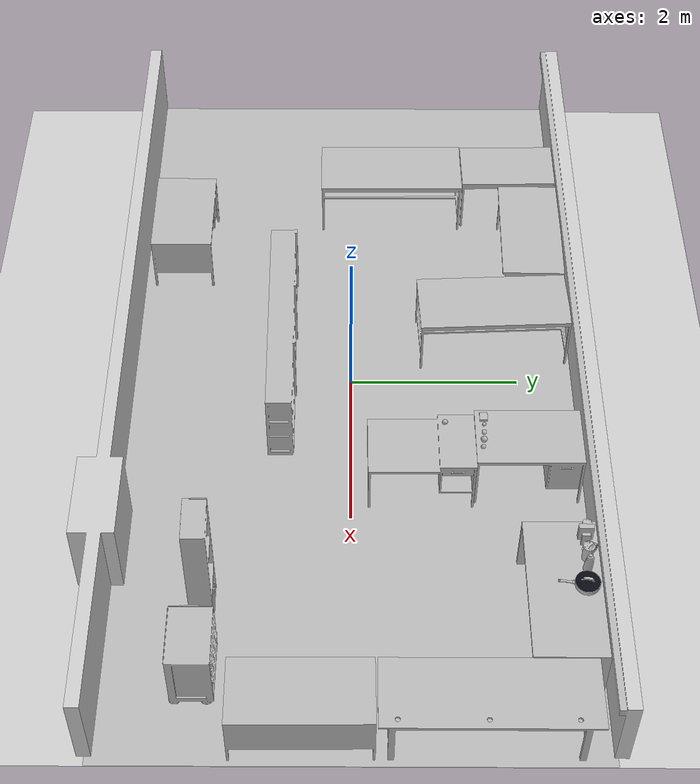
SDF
<sdf version="1.7">
 <world name="default">
  <gravity>0 0 -9.8</gravity>
  <magnetic_field>6e-06 2.3e-05 -4.2e-05</magnetic_field>
  <atmosphere type="adiabatic"/>
  <physics type="ode">
   <max_step_size>0.001</max_step_size>
   <real_time_factor>1</real_time_factor>
   <real_time_update_rate>1000</real_time_update_rate>
  </physics>
  <scene><ambient>0.4 0.4 0.4 1</ambient><background>0.7 0.7 0.7 1</background><shadows>1</shadows></scene>
  <spherical_coordinates>
   <surface_model>EARTH_WGS84</surface_model>
   <latitude_deg>0</latitude_deg>
   <longitude_deg>0</longitude_deg>
   <elevation>0</elevation>
   <heading_deg>0</heading_deg>
  </spherical_coordinates>
  <model name="gplane">
   <link name="body">
    <collision name="gplane_coll">
     <geometry><plane><normal>0 0 1</normal><size>10.075 13.18</size></plane></geometry>
     <surface><contact><ode><kp>1e+06</kp><kd>1</kd></ode></contact></surface>
     <laser_retro>2000</laser_retro>
    </collision>
    <visual name="gplane_vis">
     <geometry><plane><normal>0 0 1</normal><size>10.075 13.18</size></plane></geometry>
     <material>
      <script>
       <uri>model://base_materials/carpet/scripts</uri>
       <uri>model://base_materials/carpet/textures</uri>
       <name>carpet/carpet01</name>
      </script>
     </material>
     <cast_shadows>0</cast_shadows>
    </visual>
    <velocity_decay><linear>0</linear><angular>0</angular></velocity_decay>
   </link>
   <static>1</static>
  </model>
  <model name="Table_01">
   <link name="link_0">
    <inertial>
     <mass>14</mass>
     <inertia>
      <ixx>0.166667</ixx>
      <ixy>0</ixy>
      <ixz>0</ixz>
      <iyy>0.166667</iyy>
      <iyz>0</iyz>
      <izz>0.166667</izz>
     </inertia>
    </inertial>
    <visual name="visual">
     <geometry><mesh><uri>model://BioRoboticsLab/meshes/Table_01.dae</uri><scale>1 1 1</scale></mesh></geometry>
     <material><lighting>1</lighting><shader type="pixel"/></material>
    </visual>
    <collision name="collision">
     <geometry><mesh><uri>model://BioRoboticsLab/meshes/Table_01.dae</uri><scale>1 1 1</scale></mesh></geometry>
     <surface>
      <friction>
       <ode><mu>1</mu><mu2>1</mu2><fdir1>0 0 0</fdir1><slip1>0</slip1><slip2>0</slip2></ode>
       <torsional>
        <coefficient>1</coefficient>
        <patch_radius>0</patch_radius>
        <surface_radius>0</surface_radius>
        <use_patch_radius>1</use_patch_radius>
        <ode><slip>0</slip></ode>
       </torsional>
      </friction>
      <bounce><restitution_coefficient>0</restitution_coefficient><threshold>1e+06</threshold></bounce>
      <contact>
       <collide_without_contact>0</collide_without_contact>
       <collide_without_contact_bitmask>1</collide_without_contact_bitmask>
       <collide_bitmask>1</collide_bitmask>
       <ode>
        <soft_cfm>0</soft_cfm>
        <soft_erp>0.2</soft_erp>
        <kp>1e+13</kp>
        <kd>1</kd>
        <max_vel>0.01</max_vel>
        <min_depth>0</min_depth>
       </ode>
       <bullet>
        <split_impulse>1</split_impulse>
        <split_impulse_penetration_threshold>-0.01</split_impulse_penetration_threshold>
        <soft_cfm>0</soft_cfm>
        <soft_erp>0.2</soft_erp>
        <kp>1e+13</kp>
        <kd>1</kd>
       </bullet>
      </contact>
     </surface>
    </collision>
   </link>
   <static>1</static>
   <pose>4.62119 1.38763 0 0 -0 1.57</pose>
  </model>
  <model name="Table_02">
   <link name="link_0">
    <inertial>
     <mass>15</mass>
     <inertia>
      <ixx>0.166667</ixx>
      <ixy>0</ixy>
      <ixz>0</ixz>
      <iyy>0.166667</iyy>
      <iyz>0</iyz>
      <izz>0.166667</izz>
     </inertia>
    </inertial>
    <visual name="visual">
     <geometry><mesh><uri>model://BioRoboticsLab/meshes/Table_02.dae</uri><scale>1 1 1</scale></mesh></geometry>
     <material><lighting>1</lighting><shader type="pixel"/></material>
    </visual>
    <collision name="collision">
     <geometry><mesh><uri>model://BioRoboticsLab/meshes/Table_02.dae</uri><scale>1 1 1</scale></mesh></geometry>
     <surface>
      <friction>
       <ode><mu>1</mu><mu2>1</mu2><fdir1>0 0 0</fdir1><slip1>0</slip1><slip2>0</slip2></ode>
       <torsional>
        <coefficient>1</coefficient>
        <patch_radius>0</patch_radius>
        <surface_radius>0</surface_radius>
        <use_patch_radius>1</use_patch_radius>
        <ode><slip>0</slip></ode>
       </torsional>
      </friction>
      <bounce><restitution_coefficient>0</restitution_coefficient><threshold>1e+06</threshold></bounce>
      <contact>
       <collide_without_contact>0</collide_without_contact>
       <collide_without_contact_bitmask>1</collide_without_contact_bitmask>
       <collide_bitmask>1</collide_bitmask>
       <ode>
        <soft_cfm>0</soft_cfm>
        <soft_erp>0.2</soft_erp>
        <kp>1e+13</kp>
        <kd>1</kd>
        <max_vel>0.01</max_vel>
        <min_depth>0</min_depth>
       </ode>
       <bullet>
        <split_impulse>1</split_impulse>
        <split_impulse_penetration_threshold>-0.01</split_impulse_penetration_threshold>
        <soft_cfm>0</soft_cfm>
        <soft_erp>0.2</soft_erp>
        <kp>1e+13</kp>
        <kd>1</kd>
       </bullet>
      </contact>
     </surface>
    </collision>
   </link>
   <static>1</static>
   <pose>3.3966 2.2962 0 0 0 -3.14159</pose>
  </model>
  <model name="Table_03">
   <link name="link_0">
    <inertial>
     <mass>8</mass>
     <inertia>
      <ixx>0.166667</ixx>
      <ixy>0</ixy>
      <ixz>0</ixz>
      <iyy>0.166667</iyy>
      <iyz>0</iyz>
      <izz>0.166667</izz>
     </inertia>
    </inertial>
    <visual name="visual">
     <geometry><mesh><uri>model://BioRoboticsLab/meshes/Table_03.dae</uri><scale>1 1 1</scale></mesh></geometry>
     <material><lighting>1</lighting><shader type="pixel"/></material>
    </visual>
    <collision name="collision">
     <geometry><mesh><uri>model://BioRoboticsLab/meshes/Table_03.dae</uri><scale>1 1 1</scale></mesh></geometry>
     <surface>
      <friction>
       <ode><mu>1</mu><mu2>1</mu2><fdir1>0 0 0</fdir1><slip1>0</slip1><slip2>0</slip2></ode>
       <torsional>
        <coefficient>1</coefficient>
        <patch_radius>0</patch_radius>
        <surface_radius>0</surface_radius>
        <use_patch_radius>1</use_patch_radius>
        <ode><slip>0</slip></ode>
       </torsional>
      </friction>
      <bounce><restitution_coefficient>0</restitution_coefficient><threshold>1e+06</threshold></bounce>
      <contact>
       <collide_without_contact>0</collide_without_contact>
       <collide_without_contact_bitmask>1</collide_without_contact_bitmask>
       <collide_bitmask>1</collide_bitmask>
       <ode>
        <soft_cfm>0</soft_cfm>
        <soft_erp>0.2</soft_erp>
        <kp>1e+13</kp>
        <kd>1</kd>
        <max_vel>0.01</max_vel>
        <min_depth>0</min_depth>
       </ode>
       <bullet>
        <split_impulse>1</split_impulse>
        <split_impulse_penetration_threshold>-0.01</split_impulse_penetration_threshold>
        <soft_cfm>0</soft_cfm>
        <soft_erp>0.2</soft_erp>
        <kp>1e+13</kp>
        <kd>1</kd>
       </bullet>
      </contact>
     </surface>
    </collision>
   </link>
   <static>1</static>
   <pose>-0.655137 1.71075 0 0 -0 1.61624</pose>
  </model>
  <model name="Shelf_02">
   <link name="link_0">
    <inertial>
     <mass>12</mass>
     <inertia>
      <ixx>0.166667</ixx>
      <ixy>0</ixy>
      <ixz>0</ixz>
      <iyy>0.166667</iyy>
      <iyz>0</iyz>
      <izz>0.166667</izz>
     </inertia>
    </inertial>
    <visual name="visual">
     <geometry><mesh><uri>model://BioRoboticsLab/meshes/Shelf_02.dae</uri><scale>1 1 1</scale></mesh></geometry>
     <material><lighting>1</lighting><shader type="pixel"/></material>
    </visual>
    <collision name="collision">
     <geometry><mesh><uri>model://BioRoboticsLab/meshes/Shelf_02.dae</uri><scale>1 1 1</scale></mesh></geometry>
     <surface>
      <friction>
       <ode><mu>1</mu><mu2>1</mu2><fdir1>0 0 0</fdir1><slip1>0</slip1><slip2>0</slip2></ode>
       <torsional>
        <coefficient>1</coefficient>
        <patch_radius>0</patch_radius>
        <surface_radius>0</surface_radius>
        <use_patch_radius>1</use_patch_radius>
        <ode><slip>0</slip></ode>
       </torsional>
      </friction>
      <bounce><restitution_coefficient>0</restitution_coefficient><threshold>1e+06</threshold></bounce>
      <contact>
       <collide_without_contact>0</collide_without_contact>
       <collide_without_contact_bitmask>1</collide_without_contact_bitmask>
       <collide_bitmask>1</collide_bitmask>
       <ode>
        <soft_cfm>0</soft_cfm>
        <soft_erp>0.2</soft_erp>
        <kp>1e+13</kp>
        <kd>1</kd>
        <max_vel>0.01</max_vel>
        <min_depth>0</min_depth>
       </ode>
       <bullet>
        <split_impulse>1</split_impulse>
        <split_impulse_penetration_threshold>-0.01</split_impulse_penetration_threshold>
        <soft_cfm>0</soft_cfm>
        <soft_erp>0.2</soft_erp>
        <kp>1e+13</kp>
        <kd>1</kd>
       </bullet>
      </contact>
     </surface>
    </collision>
   </link>
   <static>1</static>
   <pose>3.1815  -1.58084 0 0 -0 0.019976</pose>
  </model>
  <model name="Lab_Mesh">
   <link name="link_0">
    <inertial>
     <mass>100000</mass>
     <inertia>
      <ixx>0.166667</ixx>
      <ixy>0</ixy>
      <ixz>0</ixz>
      <iyy>0.166667</iyy>
      <iyz>0</iyz>
      <izz>0.166667</izz>
     </inertia>
    </inertial>
    <visual name="visual">
     <geometry><mesh><uri>model://BioRoboticsLab/meshes/Lab_Mesh.dae</uri><scale>1 1 1</scale></mesh></geometry>
     <material><lighting>1</lighting><shader type="pixel"/></material>
    </visual>
    <collision name="collision">
     <geometry><mesh><uri>model://BioRoboticsLab/meshes/Lab_Mesh.dae</uri><scale>1 1 1</scale></mesh></geometry>
     <surface>
      <friction>
       <ode><mu>1</mu><mu2>1</mu2><fdir1>0 0 0</fdir1><slip1>0</slip1><slip2>0</slip2></ode>
       <torsional>
        <coefficient>1</coefficient>
        <patch_radius>0</patch_radius>
        <surface_radius>0</surface_radius>
        <use_patch_radius>1</use_patch_radius>
        <ode><slip>0</slip></ode>
       </torsional>
      </friction>
      <bounce><restitution_coefficient>0</restitution_coefficient><threshold>1e+06</threshold></bounce>
      <contact>
       <collide_without_contact>0</collide_without_contact>
       <collide_without_contact_bitmask>1</collide_without_contact_bitmask>
       <collide_bitmask>1</collide_bitmask>
       <ode>
        <soft_cfm>0</soft_cfm>
        <soft_erp>0.2</soft_erp>
        <kp>1e+13</kp>
        <kd>1</kd>
        <max_vel>0.01</max_vel>
        <min_depth>0</min_depth>
       </ode>
       <bullet>
        <split_impulse>1</split_impulse>
        <split_impulse_penetration_threshold>-0.01</split_impulse_penetration_threshold>
        <soft_cfm>0</soft_cfm>
        <soft_erp>0.2</soft_erp>
        <kp>1e+13</kp>
        <kd>1</kd>
       </bullet>
      </contact>
     </surface>
    </collision>
   </link>
   <static>1</static>
   <pose>-0.092622 0.025231 0 0 -0 0</pose>
  </model>
  <model name="Lab_Floor">
   <link name="link_0">
    <inertial>
     <mass>1</mass>
     <inertia>
      <ixx>0.166667</ixx>
      <ixy>0</ixy>
      <ixz>0</ixz>
      <iyy>0.166667</iyy>
      <iyz>0</iyz>
      <izz>0.166667</izz>
     </inertia>
    </inertial>
    <visual name="visual">
     <geometry><mesh><uri>model://BioRoboticsLab/meshes/Lab_Floor.dae</uri><scale>1 1 1</scale></mesh></geometry>
     <material><lighting>1</lighting><shader type="pixel"/></material>
    </visual>
   </link>
   <static>1</static>
   <pose>0 0 0.005 0 -0 0</pose>
  </model>
  <model name="002_master_chef_can">
   <link name="link_0">
    <inertial>
     <mass>0.6</mass>
     <inertia>
      <ixx>0.166667</ixx>
      <ixy>0</ixy>
      <ixz>0</ixz>
      <iyy>0.166667</iyy>
      <iyz>0</iyz>
      <izz>0.166667</izz>
     </inertia>
    </inertial>
    <visual name="visual">
     <geometry>
      <mesh><uri>model://YCB_virtual/meshes/002_master_chef_can.dae</uri><scale>1 1 1</scale></mesh>
     </geometry>
     <material><lighting>1</lighting><shader type="pixel"/></material>
    </visual>
    <collision name="collision">
     <geometry>
      <mesh><uri>model://YCB_virtual/meshes/002_master_chef_can.dae</uri><scale>1 1 1</scale></mesh>
     </geometry>
     <surface>
      <friction>
       <ode><mu>1</mu><mu2>1</mu2><fdir1>0 0 0</fdir1><slip1>0</slip1><slip2>0</slip2></ode>
       <torsional>
        <coefficient>1</coefficient>
        <patch_radius>0</patch_radius>
        <surface_radius>0</surface_radius>
        <use_patch_radius>1</use_patch_radius>
        <ode><slip>0</slip></ode>
       </torsional>
      </friction>
      <bounce><restitution_coefficient>0</restitution_coefficient><threshold>1e+06</threshold></bounce>
      <contact>
       <collide_without_contact>0</collide_without_contact>
       <collide_without_contact_bitmask>1</collide_without_contact_bitmask>
       <collide_bitmask>1</collide_bitmask>
       <ode>
        <soft_cfm>0</soft_cfm>
        <soft_erp>0.2</soft_erp>
        <kp>1e+13</kp>
        <kd>1</kd>
        <max_vel>0.01</max_vel>
        <min_depth>0</min_depth>
       </ode>
       <bullet>
        <split_impulse>1</split_impulse>
        <split_impulse_penetration_threshold>-0.01</split_impulse_penetration_threshold>
        <soft_cfm>0</soft_cfm>
        <soft_erp>0.2</soft_erp>
        <kp>1e+13</kp>
        <kd>1</kd>
       </bullet>
      </contact>
     </surface>
    </collision>
   </link>
   <static>0</static>
   <pose>2.6798 2.50144 0.824095 -9e-06 -6e-06 0.000442</pose>
  </model>
  <model name="003_cracker_box">
   <link name="link_0">
    <inertial>
     <mass>1</mass>
     <inertia>
      <ixx>0.166667</ixx>
      <ixy>0</ixy>
      <ixz>0</ixz>
      <iyy>0.166667</iyy>
      <iyz>0</iyz>
      <izz>0.166667</izz>
     </inertia>
    </inertial>
    <visual name="visual">
     <geometry>
      <mesh><uri>model://YCB_virtual/meshes/003_cracker_box.dae</uri><scale>1 1 1</scale></mesh>
     </geometry>
     <material><lighting>1</lighting><shader type="pixel"/></material>
    </visual>
    <collision name="collision">
     <geometry>
      <mesh><uri>model://YCB_virtual/meshes/003_cracker_box.dae</uri><scale>1 1 1</scale></mesh>
     </geometry>
     <surface>
      <friction>
       <ode><mu>1</mu><mu2>1</mu2><fdir1>0 0 0</fdir1><slip1>0</slip1><slip2>0</slip2></ode>
       <torsional>
        <coefficient>1</coefficient>
        <patch_radius>0</patch_radius>
        <surface_radius>0</surface_radius>
        <use_patch_radius>1</use_patch_radius>
        <ode><slip>0</slip></ode>
       </torsional>
      </friction>
      <bounce><restitution_coefficient>0</restitution_coefficient><threshold>1e+06</threshold></bounce>
      <contact>
       <collide_without_contact>0</collide_without_contact>
       <collide_without_contact_bitmask>1</collide_without_contact_bitmask>
       <collide_bitmask>1</collide_bitmask>
       <ode>
        <soft_cfm>0</soft_cfm>
        <soft_erp>0.2</soft_erp>
        <kp>1e+13</kp>
        <kd>1</kd>
        <max_vel>0.01</max_vel>
        <min_depth>0</min_depth>
       </ode>
       <bullet>
        <split_impulse>1</split_impulse>
        <split_impulse_penetration_threshold>-0.01</split_impulse_penetration_threshold>
        <soft_cfm>0</soft_cfm>
        <soft_erp>0.2</soft_erp>
        <kp>1e+13</kp>
        <kd>1</kd>
       </bullet>
      </contact>
     </surface>
    </collision>
   </link>
   <static>0</static>
   <pose>2.7741 2.47991 0.86 2e-06 -1e-06 8.8e-05</pose>
  </model>
  <model name="004_sugar_box">
   <link name="link_0">
    <inertial>
     <mass>0.45</mass>
     <inertia>
      <ixx>0.166667</ixx>
      <ixy>0</ixy>
      <ixz>0</ixz>
      <iyy>0.166667</iyy>
      <iyz>0</iyz>
      <izz>0.166667</izz>
     </inertia>
    </inertial>
    <visual name="visual">
     <geometry><mesh><uri>model://YCB_virtual/meshes/004_sugar_box.dae</uri><scale>1 1 1</scale></mesh></geometry>
     <material><lighting>1</lighting><shader type="pixel"/></material>
    </visual>
    <collision name="collision">
     <geometry><mesh><uri>model://YCB_virtual/meshes/004_sugar_box.dae</uri><scale>1 1 1</scale></mesh></geometry>
     <surface>
      <friction>
       <ode><mu>1</mu><mu2>1</mu2><fdir1>0 0 0</fdir1><slip1>0</slip1><slip2>0</slip2></ode>
       <torsional>
        <coefficient>1</coefficient>
        <patch_radius>0</patch_radius>
        <surface_radius>0</surface_radius>
        <use_patch_radius>1</use_patch_radius>
        <ode><slip>0</slip></ode>
       </torsional>
      </friction>
      <bounce><restitution_coefficient>0</restitution_coefficient><threshold>1e+06</threshold></bounce>
      <contact>
       <collide_without_contact>0</collide_without_contact>
       <collide_without_contact_bitmask>1</collide_without_contact_bitmask>
       <collide_bitmask>1</collide_bitmask>
       <ode>
        <soft_cfm>0</soft_cfm>
        <soft_erp>0.2</soft_erp>
        <kp>1e+13</kp>
        <kd>1</kd>
        <max_vel>0.01</max_vel>
        <min_depth>0</min_depth>
       </ode>
       <bullet>
        <split_impulse>1</split_impulse>
        <split_impulse_penetration_threshold>-0.01</split_impulse_penetration_threshold>
        <soft_cfm>0</soft_cfm>
        <soft_erp>0.2</soft_erp>
        <kp>1e+13</kp>
        <kd>1</kd>
       </bullet>
      </contact>
     </surface>
    </collision>
   </link>
   <static>0</static>
   <pose>2.85382 2.4742 0.842496 2e-06 2e-06 0.000887</pose>
  </model>
  <model name="008_pudding_box">
   <link name="link_0">
    <inertial>
     <mass>0.167</mass>
     <inertia>
      <ixx>0.166667</ixx>
      <ixy>0</ixy>
      <ixz>0</ixz>
      <iyy>0.166667</iyy>
      <iyz>0</iyz>
      <izz>0.166667</izz>
     </inertia>
    </inertial>
    <visual name="visual">
     <geometry>
      <mesh><uri>model://YCB_virtual/meshes/008_pudding_box.dae</uri><scale>1 1 1</scale></mesh>
     </geometry>
     <material><lighting>1</lighting><shader type="pixel"/></material>
    </visual>
    <collision name="collision">
     <geometry>
      <mesh><uri>model://YCB_virtual/meshes/008_pudding_box.dae</uri><scale>1 1 1</scale></mesh>
     </geometry>
     <surface>
      <friction>
       <ode><mu>1</mu><mu2>1</mu2><fdir1>0 0 0</fdir1><slip1>0</slip1><slip2>0</slip2></ode>
       <torsional>
        <coefficient>1</coefficient>
        <patch_radius>0</patch_radius>
        <surface_radius>0</surface_radius>
        <use_patch_radius>1</use_patch_radius>
        <ode><slip>0</slip></ode>
       </torsional>
      </friction>
      <bounce><restitution_coefficient>0</restitution_coefficient><threshold>1e+06</threshold></bounce>
      <contact>
       <collide_without_contact>0</collide_without_contact>
       <collide_without_contact_bitmask>1</collide_without_contact_bitmask>
       <collide_bitmask>1</collide_bitmask>
       <ode>
        <soft_cfm>0</soft_cfm>
        <soft_erp>0.2</soft_erp>
        <kp>1e+13</kp>
        <kd>1</kd>
        <max_vel>0.01</max_vel>
        <min_depth>0</min_depth>
       </ode>
       <bullet>
        <split_impulse>1</split_impulse>
        <split_impulse_penetration_threshold>-0.01</split_impulse_penetration_threshold>
        <soft_cfm>0</soft_cfm>
        <soft_erp>0.2</soft_erp>
        <kp>1e+13</kp>
        <kd>1</kd>
       </bullet>
      </contact>
     </surface>
    </collision>
   </link>
   <static>0</static>
   <pose>1.15528 1.49156 0.777077 0.004784 -0.003859 9.4e-05</pose>
  </model>
  <model name="009_gelatin_box">
   <link name="link_0">
    <inertial>
     <mass>0.09</mass>
     <inertia>
      <ixx>0.166667</ixx>
      <ixy>0</ixy>
      <ixz>0</ixz>
      <iyy>0.166667</iyy>
      <iyz>0</iyz>
      <izz>0.166667</izz>
     </inertia>
    </inertial>
    <visual name="visual">
     <geometry>
      <mesh><uri>model://YCB_virtual/meshes/009_gelatin_box.dae</uri><scale>1 1 1</scale></mesh>
     </geometry>
     <material><lighting>1</lighting><shader type="pixel"/></material>
    </visual>
    <collision name="collision">
     <geometry>
      <mesh><uri>model://YCB_virtual/meshes/009_gelatin_box.dae</uri><scale>1 1 1</scale></mesh>
     </geometry>
     <surface>
      <friction>
       <ode><mu>1</mu><mu2>1</mu2><fdir1>0 0 0</fdir1><slip1>0</slip1><slip2>0</slip2></ode>
       <torsional>
        <coefficient>1</coefficient>
        <patch_radius>0</patch_radius>
        <surface_radius>0</surface_radius>
        <use_patch_radius>1</use_patch_radius>
        <ode><slip>0</slip></ode>
       </torsional>
      </friction>
      <bounce><restitution_coefficient>0</restitution_coefficient><threshold>1e+06</threshold></bounce>
      <contact>
       <collide_without_contact>0</collide_without_contact>
       <collide_without_contact_bitmask>1</collide_without_contact_bitmask>
       <collide_bitmask>1</collide_bitmask>
       <ode>
        <soft_cfm>0</soft_cfm>
        <soft_erp>0.2</soft_erp>
        <kp>1e+13</kp>
        <kd>1</kd>
        <max_vel>0.01</max_vel>
        <min_depth>0</min_depth>
       </ode>
       <bullet>
        <split_impulse>1</split_impulse>
        <split_impulse_penetration_threshold>-0.01</split_impulse_penetration_threshold>
        <soft_cfm>0</soft_cfm>
        <soft_erp>0.2</soft_erp>
        <kp>1e+13</kp>
        <kd>1</kd>
       </bullet>
      </contact>
     </surface>
    </collision>
   </link>
   <static>0</static>
   <pose>2.93226 2.50399 0.769202 -0 0.00419 -3.4e-05</pose>
  </model>
  <model name="012_strawberry">
   <link name="link_0">
    <inertial>
     <mass>0.01</mass>
     <inertia>
      <ixx>0.166667</ixx>
      <ixy>0</ixy>
      <ixz>0</ixz>
      <iyy>0.166667</iyy>
      <iyz>0</iyz>
      <izz>0.166667</izz>
     </inertia>
    </inertial>
    <visual name="visual">
     <geometry><mesh><uri>model://YCB_virtual/meshes/012_strawberry.dae</uri><scale>1 1 1</scale></mesh></geometry>
     <material><lighting>1</lighting><shader type="pixel"/></material>
    </visual>
    <collision name="collision">
     <geometry><mesh><uri>model://YCB_virtual/meshes/012_strawberry.dae</uri><scale>1 1 1</scale></mesh></geometry>
     <surface>
      <friction>
       <ode><mu>1</mu><mu2>1</mu2><fdir1>0 0 0</fdir1><slip1>0</slip1><slip2>0</slip2></ode>
       <torsional>
        <coefficient>1</coefficient>
        <patch_radius>0</patch_radius>
        <surface_radius>0</surface_radius>
        <use_patch_radius>1</use_patch_radius>
        <ode><slip>0</slip></ode>
       </torsional>
      </friction>
      <bounce><restitution_coefficient>0</restitution_coefficient><threshold>1e+06</threshold></bounce>
      <contact>
       <collide_without_contact>0</collide_without_contact>
       <collide_without_contact_bitmask>1</collide_without_contact_bitmask>
       <collide_bitmask>1</collide_bitmask>
       <ode>
        <soft_cfm>0</soft_cfm>
        <soft_erp>0.2</soft_erp>
        <kp>1e+13</kp>
        <kd>1</kd>
        <max_vel>0.01</max_vel>
        <min_depth>0</min_depth>
       </ode>
       <bullet>
        <split_impulse>1</split_impulse>
        <split_impulse_penetration_threshold>-0.01</split_impulse_penetration_threshold>
        <soft_cfm>0</soft_cfm>
        <soft_erp>0.2</soft_erp>
        <kp>1e+13</kp>
        <kd>1</kd>
       </bullet>
      </contact>
     </surface>
    </collision>
   </link>
   <static>0</static>
   <pose>1.26453 1.49463 0.780731 0.102856 -0.02475 -0.002407</pose>
  </model>
  <model name="014_lemon">
   <link name="link_0">
    <inertial>
     <mass>0.1</mass>
     <inertia>
      <ixx>0.166667</ixx>
      <ixy>0</ixy>
      <ixz>0</ixz>
      <iyy>0.166667</iyy>
      <iyz>0</iyz>
      <izz>0.166667</izz>
     </inertia>
    </inertial>
    <visual name="visual">
     <geometry><mesh><uri>model://YCB_virtual/meshes/014_lemon.dae</uri><scale>1 1 1</scale></mesh></geometry>
     <material><lighting>1</lighting><shader type="pixel"/></material>
    </visual>
    <collision name="collision">
     <geometry><mesh><uri>model://YCB_virtual/meshes/014_lemon.dae</uri><scale>1 1 1</scale></mesh></geometry>
     <surface>
      <friction>
       <ode><mu>1</mu><mu2>1</mu2><fdir1>0 0 0</fdir1><slip1>0</slip1><slip2>0</slip2></ode>
       <torsional>
        <coefficient>1</coefficient>
        <patch_radius>0</patch_radius>
        <surface_radius>0</surface_radius>
        <use_patch_radius>1</use_patch_radius>
        <ode><slip>0</slip></ode>
       </torsional>
      </friction>
      <bounce><restitution_coefficient>0</restitution_coefficient><threshold>1e+06</threshold></bounce>
      <contact>
       <collide_without_contact>0</collide_without_contact>
       <collide_without_contact_bitmask>1</collide_without_contact_bitmask>
       <collide_bitmask>1</collide_bitmask>
       <ode>
        <soft_cfm>0</soft_cfm>
        <soft_erp>0.2</soft_erp>
        <kp>1e+13</kp>
        <kd>1</kd>
        <max_vel>0.01</max_vel>
        <min_depth>0</min_depth>
       </ode>
       <bullet>
        <split_impulse>1</split_impulse>
        <split_impulse_penetration_threshold>-0.01</split_impulse_penetration_threshold>
        <soft_cfm>0</soft_cfm>
        <soft_erp>0.2</soft_erp>
        <kp>1e+13</kp>
        <kd>1</kd>
       </bullet>
      </contact>
     </surface>
    </collision>
   </link>
   <static>0</static>
   <pose>1.37886 1.48752 0.78598 0.095457 0.089969 0.003766</pose>
  </model>
  <model name="015_peach">
   <link name="link_0">
    <inertial>
     <mass>0.12</mass>
     <inertia>
      <ixx>0.166667</ixx>
      <ixy>0</ixy>
      <ixz>0</ixz>
      <iyy>0.166667</iyy>
      <iyz>0</iyz>
      <izz>0.166667</izz>
     </inertia>
    </inertial>
    <visual name="visual">
     <geometry><mesh><uri>model://YCB_virtual/meshes/015_peach.dae</uri><scale>1 1 1</scale></mesh></geometry>
     <material><lighting>1</lighting><shader type="pixel"/></material>
    </visual>
    <collision name="collision">
     <geometry><mesh><uri>model://YCB_virtual/meshes/015_peach.dae</uri><scale>1 1 1</scale></mesh></geometry>
     <surface>
      <friction>
       <ode><mu>1</mu><mu2>1</mu2><fdir1>0 0 0</fdir1><slip1>0</slip1><slip2>0</slip2></ode>
       <torsional>
        <coefficient>1</coefficient>
        <patch_radius>0</patch_radius>
        <surface_radius>0</surface_radius>
        <use_patch_radius>1</use_patch_radius>
        <ode><slip>0</slip></ode>
       </torsional>
      </friction>
      <bounce><restitution_coefficient>0</restitution_coefficient><threshold>1e+06</threshold></bounce>
      <contact>
       <collide_without_contact>0</collide_without_contact>
       <collide_without_contact_bitmask>1</collide_without_contact_bitmask>
       <collide_bitmask>1</collide_bitmask>
       <ode>
        <soft_cfm>0</soft_cfm>
        <soft_erp>0.2</soft_erp>
        <kp>1e+13</kp>
        <kd>1</kd>
        <max_vel>0.01</max_vel>
        <min_depth>0</min_depth>
       </ode>
       <bullet>
        <split_impulse>1</split_impulse>
        <split_impulse_penetration_threshold>-0.01</split_impulse_penetration_threshold>
        <soft_cfm>0</soft_cfm>
        <soft_erp>0.2</soft_erp>
        <kp>1e+13</kp>
        <kd>1</kd>
       </bullet>
      </contact>
     </surface>
    </collision>
   </link>
   <static>0</static>
   <pose>1.2384 1.05482 0.788496 0.021421 -0.087371 8.1e-05</pose>
  </model>
  <model name="017_orange">
   <link name="link_0">
    <inertial>
     <mass>0.25</mass>
     <inertia>
      <ixx>0.166667</ixx>
      <ixy>0</ixy>
      <ixz>0</ixz>
      <iyy>0.166667</iyy>
      <iyz>0</iyz>
      <izz>0.166667</izz>
     </inertia>
    </inertial>
    <visual name="visual">
     <geometry><mesh><uri>model://YCB_virtual/meshes/017_orange.dae</uri><scale>1 1 1</scale></mesh></geometry>
     <material><lighting>1</lighting><shader type="pixel"/></material>
    </visual>
    <collision name="collision">
     <geometry><mesh><uri>model://YCB_virtual/meshes/017_orange.dae</uri><scale>1 1 1</scale></mesh></geometry>
     <surface>
      <friction>
       <ode><mu>1</mu><mu2>1</mu2><fdir1>0 0 0</fdir1><slip1>0</slip1><slip2>0</slip2></ode>
       <torsional>
        <coefficient>1</coefficient>
        <patch_radius>0</patch_radius>
        <surface_radius>0</surface_radius>
        <use_patch_radius>1</use_patch_radius>
        <ode><slip>0</slip></ode>
       </torsional>
      </friction>
      <bounce><restitution_coefficient>0</restitution_coefficient><threshold>1e+06</threshold></bounce>
      <contact>
       <collide_without_contact>0</collide_without_contact>
       <collide_without_contact_bitmask>1</collide_without_contact_bitmask>
       <collide_bitmask>1</collide_bitmask>
       <ode>
        <soft_cfm>0</soft_cfm>
        <soft_erp>0.2</soft_erp>
        <kp>1e+13</kp>
        <kd>1</kd>
        <max_vel>0.01</max_vel>
        <min_depth>0</min_depth>
       </ode>
       <bullet>
        <split_impulse>1</split_impulse>
        <split_impulse_penetration_threshold>-0.01</split_impulse_penetration_threshold>
        <soft_cfm>0</soft_cfm>
        <soft_erp>0.2</soft_erp>
        <kp>1e+13</kp>
        <kd>1</kd>
       </bullet>
      </contact>
     </surface>
    </collision>
   </link>
   <static>0</static>
   <pose>1.48638 1.48128 0.793781 0.006122 0.022557 -3.4e-05</pose>
  </model>
  <model name="018_plum">
   <link name="link_0">
    <inertial>
     <mass>0.08</mass>
     <inertia>
      <ixx>0.166667</ixx>
      <ixy>0</ixy>
      <ixz>0</ixz>
      <iyy>0.166667</iyy>
      <iyz>0</iyz>
      <izz>0.166667</izz>
     </inertia>
    </inertial>
    <visual name="visual">
     <geometry><mesh><uri>model://YCB_virtual/meshes/018_plum.dae</uri><scale>1 1 1</scale></mesh></geometry>
     <material><lighting>1</lighting><shader type="pixel"/></material>
    </visual>
    <collision name="collision">
     <geometry><mesh><uri>model://YCB_virtual/meshes/018_plum.dae</uri><scale>1 1 1</scale></mesh></geometry>
     <surface>
      <friction>
       <ode><mu>1</mu><mu2>1</mu2><fdir1>0 0 0</fdir1><slip1>0</slip1><slip2>0</slip2></ode>
       <torsional>
        <coefficient>1</coefficient>
        <patch_radius>0</patch_radius>
        <surface_radius>0</surface_radius>
        <use_patch_radius>1</use_patch_radius>
        <ode><slip>0</slip></ode>
       </torsional>
      </friction>
      <bounce><restitution_coefficient>0</restitution_coefficient><threshold>1e+06</threshold></bounce>
      <contact>
       <collide_without_contact>0</collide_without_contact>
       <collide_without_contact_bitmask>1</collide_without_contact_bitmask>
       <collide_bitmask>1</collide_bitmask>
       <ode>
        <soft_cfm>0</soft_cfm>
        <soft_erp>0.2</soft_erp>
        <kp>1e+13</kp>
        <kd>1</kd>
        <max_vel>0.01</max_vel>
        <min_depth>0</min_depth>
       </ode>
       <bullet>
        <split_impulse>1</split_impulse>
        <split_impulse_penetration_threshold>-0.01</split_impulse_penetration_threshold>
        <soft_cfm>0</soft_cfm>
        <soft_erp>0.2</soft_erp>
        <kp>1e+13</kp>
        <kd>1</kd>
       </bullet>
      </contact>
     </surface>
    </collision>
   </link>
   <static>0</static>
   <pose>1.58296 1.46964 0.783689 0.00579 -0.027533 7.1e-05</pose>
  </model>
  <model name="019_pitcher_base">
   <link name="link_0">
    <inertial>
     <mass>0.4</mass>
     <inertia>
      <ixx>0.166667</ixx>
      <ixy>0</ixy>
      <ixz>0</ixz>
      <iyy>0.166667</iyy>
      <iyz>0</iyz>
      <izz>0.166667</izz>
     </inertia>
    </inertial>
    <visual name="visual">
     <geometry>
      <mesh><uri>model://YCB_virtual/meshes/019_pitcher_base.dae</uri><scale>1 1 1</scale></mesh>
     </geometry>
     <material><lighting>1</lighting><shader type="pixel"/></material>
    </visual>
    <collision name="collision">
     <geometry>
      <mesh><uri>model://YCB_virtual/meshes/019_pitcher_base.dae</uri><scale>1 1 1</scale></mesh>
     </geometry>
     <surface>
      <friction>
       <ode><mu>1</mu><mu2>1</mu2><fdir1>0 0 0</fdir1><slip1>0</slip1><slip2>0</slip2></ode>
       <torsional>
        <coefficient>1</coefficient>
        <patch_radius>0</patch_radius>
        <surface_radius>0</surface_radius>
        <use_patch_radius>1</use_patch_radius>
        <ode><slip>0</slip></ode>
       </torsional>
      </friction>
      <bounce><restitution_coefficient>0</restitution_coefficient><threshold>1e+06</threshold></bounce>
      <contact>
       <collide_without_contact>0</collide_without_contact>
       <collide_without_contact_bitmask>1</collide_without_contact_bitmask>
       <collide_bitmask>1</collide_bitmask>
       <ode>
        <soft_cfm>0</soft_cfm>
        <soft_erp>0.2</soft_erp>
        <kp>1e+13</kp>
        <kd>1</kd>
        <max_vel>0.01</max_vel>
        <min_depth>0</min_depth>
       </ode>
       <bullet>
        <split_impulse>1</split_impulse>
        <split_impulse_penetration_threshold>-0.01</split_impulse_penetration_threshold>
        <soft_cfm>0</soft_cfm>
        <soft_erp>0.2</soft_erp>
        <kp>1e+13</kp>
        <kd>1</kd>
       </bullet>
      </contact>
     </surface>
    </collision>
   </link>
   <static>0</static>
   <pose>3.03744 2.48178 0.890674 1e-06 -2e-06 -1.16977</pose>
  </model>
  <model name="021_bleach_cleanser">
   <link name="link_0">
    <inertial>
     <mass>1.02</mass>
     <inertia>
      <ixx>0.166667</ixx>
      <ixy>0</ixy>
      <ixz>0</ixz>
      <iyy>0.166667</iyy>
      <iyz>0</iyz>
      <izz>0.166667</izz>
     </inertia>
    </inertial>
    <visual name="visual">
     <geometry>
      <mesh><uri>model://YCB_virtual/meshes/021_bleach_cleanser.dae</uri><scale>1 1 1</scale></mesh>
     </geometry>
     <material><lighting>1</lighting><shader type="pixel"/></material>
    </visual>
    <collision name="collision">
     <geometry>
      <mesh><uri>model://YCB_virtual/meshes/021_bleach_cleanser.dae</uri><scale>1 1 1</scale></mesh>
     </geometry>
     <surface>
      <friction>
       <ode><mu>1</mu><mu2>1</mu2><fdir1>0 0 0</fdir1><slip1>0</slip1><slip2>0</slip2></ode>
       <torsional>
        <coefficient>1</coefficient>
        <patch_radius>0</patch_radius>
        <surface_radius>0</surface_radius>
        <use_patch_radius>1</use_patch_radius>
        <ode><slip>0</slip></ode>
       </torsional>
      </friction>
      <bounce><restitution_coefficient>0</restitution_coefficient><threshold>1e+06</threshold></bounce>
      <contact>
       <collide_without_contact>0</collide_without_contact>
       <collide_without_contact_bitmask>1</collide_without_contact_bitmask>
       <collide_bitmask>1</collide_bitmask>
       <ode>
        <soft_cfm>0</soft_cfm>
        <soft_erp>0.2</soft_erp>
        <kp>1e+13</kp>
        <kd>1</kd>
        <max_vel>0.01</max_vel>
        <min_depth>0</min_depth>
       </ode>
       <bullet>
        <split_impulse>1</split_impulse>
        <split_impulse_penetration_threshold>-0.01</split_impulse_penetration_threshold>
        <soft_cfm>0</soft_cfm>
        <soft_erp>0.2</soft_erp>
        <kp>1e+13</kp>
        <kd>1</kd>
       </bullet>
      </contact>
     </surface>
    </collision>
   </link>
   <static>0</static>
   <pose>3.16547 2.47784 0.861424 0.00024 -2e-06 0.000912</pose>
  </model>
  <model name="027_skilletd">
   <link name="link_0">
    <inertial>
     <mass>1.6</mass>
     <inertia>
      <ixx>0.166667</ixx>
      <ixy>0</ixy>
      <ixz>0</ixz>
      <iyy>0.166667</iyy>
      <iyz>0</iyz>
      <izz>0.166667</izz>
     </inertia>
    </inertial>
    <visual name="visual">
     <geometry><mesh><uri>model://YCB_virtual/meshes/027_skillet.dae</uri><scale>1 1 1</scale></mesh></geometry>
     <material><lighting>1</lighting><shader type="pixel"/></material>
    </visual>
    <collision name="collision">
     <geometry><mesh><uri>model://YCB_virtual/meshes/027_skillet.dae</uri><scale>1 1 1</scale></mesh></geometry>
     <surface>
      <friction>
       <ode><mu>1</mu><mu2>1</mu2><fdir1>0 0 0</fdir1><slip1>0</slip1><slip2>0</slip2></ode>
       <torsional>
        <coefficient>1</coefficient>
        <patch_radius>0</patch_radius>
        <surface_radius>0</surface_radius>
        <use_patch_radius>1</use_patch_radius>
        <ode><slip>0</slip></ode>
       </torsional>
      </friction>
      <bounce><restitution_coefficient>0</restitution_coefficient><threshold>1e+06</threshold></bounce>
      <contact>
       <collide_without_contact>0</collide_without_contact>
       <collide_without_contact_bitmask>1</collide_without_contact_bitmask>
       <collide_bitmask>1</collide_bitmask>
       <ode>
        <soft_cfm>0</soft_cfm>
        <soft_erp>0.2</soft_erp>
        <kp>1e+13</kp>
        <kd>1</kd>
        <max_vel>0.01</max_vel>
        <min_depth>0</min_depth>
       </ode>
       <bullet>
        <split_impulse>1</split_impulse>
        <split_impulse_penetration_threshold>-0.01</split_impulse_penetration_threshold>
        <soft_cfm>0</soft_cfm>
        <soft_erp>0.2</soft_erp>
        <kp>1e+13</kp>
        <kd>1</kd>
       </bullet>
      </contact>
     </surface>
    </collision>
   </link>
   <static>0</static>
   <pose>3.37172 2.45256 0.801351 -6e-06 -1.2e-05 -1.55828</pose>
  </model>
  <light name="inner_point_white1" type="point">
   <pose>4 5 4 0 -0 0</pose>
   <diffuse>0.2 0.2 0.2 1</diffuse>
   <specular>0.1 0.1 0.1 1</specular>
   <attenuation>
    <range>20</range>
    <linear>0.1</linear>
    <constant>0.2</constant>
    <quadratic>0</quadratic>
   </attenuation>
   <cast_shadows>0</cast_shadows>
   <direction>0 0 -1</direction>
   <spot><inner_angle>0</inner_angle><outer_angle>0</outer_angle><falloff>0</falloff></spot>
  </light>
  <light name="inner_point_white2" type="point">
   <pose>4 10 4 0 -0 0</pose>
   <diffuse>0.2 0.2 0.2 1</diffuse>
   <specular>0.1 0.1 0.1 1</specular>
   <attenuation>
    <range>20</range>
    <linear>0.1</linear>
    <constant>0.2</constant>
    <quadratic>0</quadratic>
   </attenuation>
   <cast_shadows>0</cast_shadows>
   <direction>0 0 -1</direction>
   <spot><inner_angle>0</inner_angle><outer_angle>0</outer_angle><falloff>0</falloff></spot>
  </light>
  <light name="inner_point_white3" type="point">
   <pose>8 5 4 0 -0 0</pose>
   <diffuse>0.2 0.2 0.2 1</diffuse>
   <specular>0.1 0.1 0.1 1</specular>
   <attenuation>
    <range>20</range>
    <linear>0.1</linear>
    <constant>0.2</constant>
    <quadratic>0</quadratic>
   </attenuation>
   <cast_shadows>0</cast_shadows>
   <direction>0 0 -1</direction>
   <spot><inner_angle>0</inner_angle><outer_angle>0</outer_angle><falloff>0</falloff></spot>
  </light>
  <light name="inner_point_white4" type="point">
   <pose>8 10 4 0 -0 0</pose>
   <diffuse>0.2 0.2 0.2 1</diffuse>
   <specular>0.1 0.1 0.1 1</specular>
   <attenuation>
    <range>20</range>
    <linear>0.1</linear>
    <constant>0.2</constant>
    <quadratic>0</quadratic>
   </attenuation>
   <cast_shadows>0</cast_shadows>
   <direction>0 0 -1</direction>
   <spot><inner_angle>0</inner_angle><outer_angle>0</outer_angle><falloff>0</falloff></spot>
  </light>
  <light name="inner_point_white5" type="point">
   <pose>4 5 4 0 -0 0</pose>
   <diffuse>0.2 0.2 0.2 1</diffuse>
   <specular>0.1 0.1 0.1 1</specular>
   <attenuation>
    <range>20</range>
    <linear>0.1</linear>
    <constant>0.2</constant>
    <quadratic>0</quadratic>
   </attenuation>
   <cast_shadows>0</cast_shadows>
   <direction>0 0 -1</direction>
   <spot><inner_angle>0</inner_angle><outer_angle>0</outer_angle><falloff>0</falloff></spot>
  </light>
  <light name="inner_point_white6" type="point">
   <pose>4 10 4 0 -0 0</pose>
   <diffuse>0.2 0.2 0.2 1</diffuse>
   <specular>0.1 0.1 0.1 1</specular>
   <attenuation>
    <range>20</range>
    <linear>0.1</linear>
    <constant>0.2</constant>
    <quadratic>0</quadratic>
   </attenuation>
   <cast_shadows>0</cast_shadows>
   <direction>0 0 -1</direction>
   <spot><inner_angle>0</inner_angle><outer_angle>0</outer_angle><falloff>0</falloff></spot>
  </light>
  <light name="inner_point_white7" type="point">
   <pose>8 5 4 0 -0 0</pose>
   <diffuse>0.2 0.2 0.2 1</diffuse>
   <specular>0.1 0.1 0.1 1</specular>
   <attenuation>
    <range>20</range>
    <linear>0.1</linear>
    <constant>0.2</constant>
    <quadratic>0</quadratic>
   </attenuation>
   <cast_shadows>0</cast_shadows>
   <direction>0 0 -1</direction>
   <spot><inner_angle>0</inner_angle><outer_angle>0</outer_angle><falloff>0</falloff></spot>
  </light>
  <light name="inner_point_white8" type="point">
   <pose>8 10 4 0 -0 0</pose>
   <diffuse>0.2 0.2 0.2 1</diffuse>
   <specular>0.1 0.1 0.1 1</specular>
   <attenuation>
    <range>20</range>
    <linear>0.1</linear>
    <constant>0.2</constant>
    <quadratic>0</quadratic>
   </attenuation>
   <cast_shadows>0</cast_shadows>
   <direction>0 0 -1</direction>
   <spot><inner_angle>0</inner_angle><outer_angle>0</outer_angle><falloff>0</falloff></spot>
  </light>
  <model name="Table_04">
   <link name="link_0">
    <inertial>
     <mass>8</mass>
     <inertia>
      <ixx>0.166667</ixx>
      <ixy>0</ixy>
      <ixz>0</ixz>
      <iyy>0.166667</iyy>
      <iyz>0</iyz>
      <izz>0.166667</izz>
     </inertia>
    </inertial>
    <visual name="visual">
     <geometry><mesh><uri>model://BioRoboticsLab/meshes/Table_04.dae</uri><scale>1 1 1</scale></mesh></geometry>
     <material><lighting>1</lighting><shader type="pixel"/></material>
    </visual>
    <collision name="collision">
     <geometry><mesh><uri>model://BioRoboticsLab/meshes/Table_04.dae</uri><scale>1 1 1</scale></mesh></geometry>
     <surface>
      <friction>
       <ode><mu>1</mu><mu2>1</mu2><fdir1>0 0 0</fdir1><slip1>0</slip1><slip2>0</slip2></ode>
       <torsional>
        <coefficient>1</coefficient>
        <patch_radius>0</patch_radius>
        <surface_radius>0</surface_radius>
        <use_patch_radius>1</use_patch_radius>
        <ode><slip>0</slip></ode>
       </torsional>
      </friction>
      <bounce><restitution_coefficient>0</restitution_coefficient><threshold>1e+06</threshold></bounce>
      <contact>
       <collide_without_contact>0</collide_without_contact>
       <collide_without_contact_bitmask>1</collide_without_contact_bitmask>
       <collide_bitmask>1</collide_bitmask>
       <ode>
        <soft_cfm>0</soft_cfm>
        <soft_erp>0.2</soft_erp>
        <kp>1e+13</kp>
        <kd>1</kd>
        <max_vel>0.01</max_vel>
        <min_depth>0</min_depth>
       </ode>
       <bullet>
        <split_impulse>1</split_impulse>
        <split_impulse_penetration_threshold>-0.01</split_impulse_penetration_threshold>
        <soft_cfm>0</soft_cfm>
        <soft_erp>0.2</soft_erp>
        <kp>1e+13</kp>
        <kd>1</kd>
       </bullet>
      </contact>
     </surface>
    </collision>
   </link>
   <static>1</static>
   <pose>-1.89388 2.2429 0 0 0 -0.017754</pose>
  </model>
  <model name="Table_05">
   <link name="link_0">
    <inertial>
     <mass>7</mass>
     <inertia>
      <ixx>0.166667</ixx>
      <ixy>0</ixy>
      <ixz>0</ixz>
      <iyy>0.166667</iyy>
      <iyz>0</iyz>
      <izz>0.166667</izz>
     </inertia>
    </inertial>
    <visual name="visual">
     <geometry><mesh><uri>model://BioRoboticsLab/meshes/Table_05.dae</uri><scale>1 1 1</scale></mesh></geometry>
     <material><lighting>1</lighting><shader type="pixel"/></material>
    </visual>
    <collision name="collision">
     <geometry><mesh><uri>model://BioRoboticsLab/meshes/Table_05.dae</uri><scale>1 1 1</scale></mesh></geometry>
     <surface>
      <friction>
       <ode><mu>1</mu><mu2>1</mu2><fdir1>0 0 0</fdir1><slip1>0</slip1><slip2>0</slip2></ode>
       <torsional>
        <coefficient>1</coefficient>
        <patch_radius>0</patch_radius>
        <surface_radius>0</surface_radius>
        <use_patch_radius>1</use_patch_radius>
        <ode><slip>0</slip></ode>
       </torsional>
      </friction>
      <bounce><restitution_coefficient>0</restitution_coefficient><threshold>1e+06</threshold></bounce>
      <contact>
       <collide_without_contact>0</collide_without_contact>
       <collide_without_contact_bitmask>1</collide_without_contact_bitmask>
       <collide_bitmask>1</collide_bitmask>
       <ode>
        <soft_cfm>0</soft_cfm>
        <soft_erp>0.2</soft_erp>
        <kp>1e+13</kp>
        <kd>1</kd>
        <max_vel>0.01</max_vel>
        <min_depth>0</min_depth>
       </ode>
       <bullet>
        <split_impulse>1</split_impulse>
        <split_impulse_penetration_threshold>-0.01</split_impulse_penetration_threshold>
        <soft_cfm>0</soft_cfm>
        <soft_erp>0.2</soft_erp>
        <kp>1e+13</kp>
        <kd>1</kd>
       </bullet>
      </contact>
     </surface>
    </collision>
   </link>
   <static>1</static>
   <pose>-3.05814 2.02214 0 0 -0 1.58727</pose>
  </model>
  <model name="Table_03_0">
   <link name="link_0">
    <inertial>
     <mass>8</mass>
     <inertia>
      <ixx>0.166667</ixx>
      <ixy>0</ixy>
      <ixz>0</ixz>
      <iyy>0.166667</iyy>
      <iyz>0</iyz>
      <izz>0.166667</izz>
     </inertia>
    </inertial>
    <visual name="visual">
     <geometry><mesh><uri>model://BioRoboticsLab/meshes/Table_03.dae</uri><scale>1 1 1</scale></mesh></geometry>
     <material><lighting>1</lighting><shader type="pixel"/></material>
    </visual>
    <collision name="collision">
     <geometry><mesh><uri>model://BioRoboticsLab/meshes/Table_03.dae</uri><scale>1 1 1</scale></mesh></geometry>
     <surface>
      <friction>
       <ode><mu>1</mu><mu2>1</mu2><fdir1>0 0 0</fdir1><slip1>0</slip1><slip2>0</slip2></ode>
       <torsional>
        <coefficient>1</coefficient>
        <patch_radius>0</patch_radius>
        <surface_radius>0</surface_radius>
        <use_patch_radius>1</use_patch_radius>
        <ode><slip>0</slip></ode>
       </torsional>
      </friction>
      <bounce><restitution_coefficient>0</restitution_coefficient><threshold>1e+06</threshold></bounce>
      <contact>
       <collide_without_contact>0</collide_without_contact>
       <collide_without_contact_bitmask>1</collide_without_contact_bitmask>
       <collide_bitmask>1</collide_bitmask>
       <ode>
        <soft_cfm>0</soft_cfm>
        <soft_erp>0.2</soft_erp>
        <kp>1e+13</kp>
        <kd>1</kd>
        <max_vel>0.01</max_vel>
        <min_depth>0</min_depth>
       </ode>
       <bullet>
        <split_impulse>1</split_impulse>
        <split_impulse_penetration_threshold>-0.01</split_impulse_penetration_threshold>
        <soft_cfm>0</soft_cfm>
        <soft_erp>0.2</soft_erp>
        <kp>1e+13</kp>
        <kd>1</kd>
       </bullet>
      </contact>
     </surface>
    </collision>
   </link>
   <static>1</static>
   <pose>-3.02131 0.512496 0 0 0 -1.56459</pose>
  </model>
  <model name="ToolBox_red">
   <link name="link_0">
    <inertial>
     <mass>20</mass>
     <inertia>
      <ixx>0.166667</ixx>
      <ixy>0</ixy>
      <ixz>0</ixz>
      <iyy>0.166667</iyy>
      <iyz>0</iyz>
      <izz>0.166667</izz>
     </inertia>
     <pose>0 0 0.5 0 -0 0</pose>
    </inertial>
    <visual name="visual">
     <geometry><mesh><uri>model://BioRoboticsLab/meshes/ToolBox_red.dae</uri><scale>1 1 1</scale></mesh></geometry>
     <material><lighting>1</lighting><shader type="pixel"/></material>
    </visual>
    <collision name="collision">
     <geometry><mesh><uri>model://BioRoboticsLab/meshes/ToolBox_red.dae</uri><scale>1 1 1</scale></mesh></geometry>
     <surface>
      <friction>
       <ode><mu>1</mu><mu2>1</mu2><fdir1>0 0 0</fdir1><slip1>0</slip1><slip2>0</slip2></ode>
       <torsional>
        <coefficient>1</coefficient>
        <patch_radius>0</patch_radius>
        <surface_radius>0</surface_radius>
        <use_patch_radius>1</use_patch_radius>
        <ode><slip>0</slip></ode>
       </torsional>
      </friction>
      <bounce><restitution_coefficient>0</restitution_coefficient><threshold>1e+06</threshold></bounce>
      <contact>
       <collide_without_contact>0</collide_without_contact>
       <collide_without_contact_bitmask>1</collide_without_contact_bitmask>
       <collide_bitmask>1</collide_bitmask>
       <ode>
        <soft_cfm>0</soft_cfm>
        <soft_erp>0.2</soft_erp>
        <kp>1e+13</kp>
        <kd>1</kd>
        <max_vel>0.01</max_vel>
        <min_depth>0</min_depth>
       </ode>
       <bullet>
        <split_impulse>1</split_impulse>
        <split_impulse_penetration_threshold>-0.01</split_impulse_penetration_threshold>
        <soft_cfm>0</soft_cfm>
        <soft_erp>0.2</soft_erp>
        <kp>1e+13</kp>
        <kd>1</kd>
       </bullet>
      </contact>
     </surface>
    </collision>
   </link>
   <static>0</static>
   <pose>4.050676 -1.65909 -0.000651 2.1e-05 -0 0</pose>
  </model>
  <model name="Desk_01">
   <link name="link_0">
    <inertial>
     <mass>35</mass>
     <inertia>
      <ixx>0.166667</ixx>
      <ixy>0</ixy>
      <ixz>0</ixz>
      <iyy>0.166667</iyy>
      <iyz>0</iyz>
      <izz>0.166667</izz>
     </inertia>
    </inertial>
    <visual name="visual">
     <geometry><mesh><uri>model://BioRoboticsLab/meshes/Desk_01.dae</uri><scale>1 1 1</scale></mesh></geometry>
     <material><lighting>1</lighting><shader type="pixel"/></material>
    </visual>
    <collision name="collision">
     <geometry><mesh><uri>model://BioRoboticsLab/meshes/Desk_01.dae</uri><scale>1 1 1</scale></mesh></geometry>
     <surface>
      <friction>
       <ode><mu>1</mu><mu2>1</mu2><fdir1>0 0 0</fdir1><slip1>0</slip1><slip2>0</slip2></ode>
       <torsional>
        <coefficient>1</coefficient>
        <patch_radius>0</patch_radius>
        <surface_radius>0</surface_radius>
        <use_patch_radius>1</use_patch_radius>
        <ode><slip>0</slip></ode>
       </torsional>
      </friction>
      <bounce><restitution_coefficient>0</restitution_coefficient><threshold>1e+06</threshold></bounce>
      <contact>
       <collide_without_contact>0</collide_without_contact>
       <collide_without_contact_bitmask>1</collide_without_contact_bitmask>
       <collide_bitmask>1</collide_bitmask>
       <ode>
        <soft_cfm>0</soft_cfm>
        <soft_erp>0.2</soft_erp>
        <kp>1e+13</kp>
        <kd>1</kd>
        <max_vel>0.01</max_vel>
        <min_depth>0</min_depth>
       </ode>
       <bullet>
        <split_impulse>1</split_impulse>
        <split_impulse_penetration_threshold>-0.01</split_impulse_penetration_threshold>
        <soft_cfm>0</soft_cfm>
        <soft_erp>0.2</soft_erp>
        <kp>1e+13</kp>
        <kd>1</kd>
       </bullet>
      </contact>
     </surface>
    </collision>
   </link>
   <static>1</static>
   <pose>4.60448 -0.497618 0 0 -0 1.57832</pose>
  </model>
  <model name="Desk_02">
   <link name="link_0">
    <inertial>
     <mass>19</mass>
     <inertia>
      <ixx>0.166667</ixx>
      <ixy>0</ixy>
      <ixz>0</ixz>
      <iyy>0.166667</iyy>
      <iyz>0</iyz>
      <izz>0.166667</izz>
     </inertia>
    </inertial>
    <visual name="visual">
     <geometry><mesh><uri>model://BioRoboticsLab/meshes/Desk_02.dae</uri><scale>1 1 1</scale></mesh></geometry>
     <material><lighting>1</lighting><shader type="pixel"/></material>
    </visual>
    <collision name="collision">
     <geometry><mesh><uri>model://BioRoboticsLab/meshes/Desk_02.dae</uri><scale>1 1 1</scale></mesh></geometry>
     <surface>
      <friction>
       <ode><mu>1</mu><mu2>1</mu2><fdir1>0 0 0</fdir1><slip1>0</slip1><slip2>0</slip2></ode>
       <torsional>
        <coefficient>1</coefficient>
        <patch_radius>0</patch_radius>
        <surface_radius>0</surface_radius>
        <use_patch_radius>1</use_patch_radius>
        <ode><slip>0</slip></ode>
       </torsional>
      </friction>
      <bounce><restitution_coefficient>0</restitution_coefficient><threshold>1e+06</threshold></bounce>
      <contact>
       <collide_without_contact>0</collide_without_contact>
       <collide_without_contact_bitmask>1</collide_without_contact_bitmask>
       <collide_bitmask>1</collide_bitmask>
       <ode>
        <soft_cfm>0</soft_cfm>
        <soft_erp>0.2</soft_erp>
        <kp>1e+13</kp>
        <kd>1</kd>
        <max_vel>0.01</max_vel>
        <min_depth>0</min_depth>
       </ode>
       <bullet>
        <split_impulse>1</split_impulse>
        <split_impulse_penetration_threshold>-0.01</split_impulse_penetration_threshold>
        <soft_cfm>0</soft_cfm>
        <soft_erp>0.2</soft_erp>
        <kp>1e+13</kp>
        <kd>1</kd>
       </bullet>
      </contact>
     </surface>
    </collision>
   </link>
   <static>1</static>
   <pose>1.4839 0.938157 0 0 0 -1.56403</pose>
  </model>
  <model name="Desk_03">
   <link name="link_0">
    <inertial>
     <mass>25</mass>
     <inertia>
      <ixx>0.166667</ixx>
      <ixy>0</ixy>
      <ixz>0</ixz>
      <iyy>0.166667</iyy>
      <iyz>0</iyz>
      <izz>0.166667</izz>
     </inertia>
    </inertial>
    <visual name="visual">
     <geometry><mesh><uri>model://BioRoboticsLab/meshes/Desk_03.dae</uri><scale>1 1 1</scale></mesh></geometry>
     <material><lighting>1</lighting><shader type="pixel"/></material>
    </visual>
    <collision name="collision">
     <geometry><mesh><uri>model://BioRoboticsLab/meshes/Desk_03.dae</uri><scale>1 1 1</scale></mesh></geometry>
     <surface>
      <friction>
       <ode><mu>1</mu><mu2>1</mu2><fdir1>0 0 0</fdir1><slip1>0</slip1><slip2>0</slip2></ode>
       <torsional>
        <coefficient>1</coefficient>
        <patch_radius>0</patch_radius>
        <surface_radius>0</surface_radius>
        <use_patch_radius>1</use_patch_radius>
        <ode><slip>0</slip></ode>
       </torsional>
      </friction>
      <bounce><restitution_coefficient>0</restitution_coefficient><threshold>1e+06</threshold></bounce>
      <contact>
       <collide_without_contact>0</collide_without_contact>
       <collide_without_contact_bitmask>1</collide_without_contact_bitmask>
       <collide_bitmask>1</collide_bitmask>
       <ode>
        <soft_cfm>0</soft_cfm>
        <soft_erp>0.2</soft_erp>
        <kp>1e+13</kp>
        <kd>1</kd>
        <max_vel>0.01</max_vel>
        <min_depth>0</min_depth>
       </ode>
       <bullet>
        <split_impulse>1</split_impulse>
        <split_impulse_penetration_threshold>-0.01</split_impulse_penetration_threshold>
        <soft_cfm>0</soft_cfm>
        <soft_erp>0.2</soft_erp>
        <kp>1e+13</kp>
        <kd>1</kd>
       </bullet>
      </contact>
     </surface>
    </collision>
   </link>
   <static>1</static>
   <pose>1.415598 1.99255 0 0 0 -1.56804</pose>
  </model>
  <model name="Desk_04">
   <link name="link_0">
    <inertial>
     <mass>15</mass>
     <inertia>
      <ixx>0.166667</ixx>
      <ixy>0</ixy>
      <ixz>0</ixz>
      <iyy>0.166667</iyy>
      <iyz>0</iyz>
      <izz>0.166667</izz>
     </inertia>
    </inertial>
    <visual name="visual">
     <geometry><mesh><uri>model://BioRoboticsLab/meshes/Desk_04.dae</uri><scale>1 1 1</scale></mesh></geometry>
     <material><lighting>1</lighting><shader type="pixel"/></material>
    </visual>
    <collision name="collision">
     <geometry><mesh><uri>model://BioRoboticsLab/meshes/Desk_04.dae</uri><scale>1 1 1</scale></mesh></geometry>
     <surface>
      <friction>
       <ode><mu>1</mu><mu2>1</mu2><fdir1>0 0 0</fdir1><slip1>0</slip1><slip2>0</slip2></ode>
       <torsional>
        <coefficient>1</coefficient>
        <patch_radius>0</patch_radius>
        <surface_radius>0</surface_radius>
        <use_patch_radius>1</use_patch_radius>
        <ode><slip>0</slip></ode>
       </torsional>
      </friction>
      <bounce><restitution_coefficient>0</restitution_coefficient><threshold>1e+06</threshold></bounce>
      <contact>
       <collide_without_contact>0</collide_without_contact>
       <collide_without_contact_bitmask>1</collide_without_contact_bitmask>
       <collide_bitmask>1</collide_bitmask>
       <ode>
        <soft_cfm>0</soft_cfm>
        <soft_erp>0.2</soft_erp>
        <kp>1e+13</kp>
        <kd>1</kd>
        <max_vel>0.01</max_vel>
        <min_depth>0</min_depth>
       </ode>
       <bullet>
        <split_impulse>1</split_impulse>
        <split_impulse_penetration_threshold>-0.01</split_impulse_penetration_threshold>
        <soft_cfm>0</soft_cfm>
        <soft_erp>0.2</soft_erp>
        <kp>1e+13</kp>
        <kd>1</kd>
       </bullet>
      </contact>
     </surface>
    </collision>
   </link>
   <static>1</static>
   <pose>-2.19478 -2.11643 0 0 -0 0</pose>
  </model>
  <model name="Shelf_01_center">
   <link name="link_0">
    <inertial>
     <mass>30</mass>
     <inertia>
      <ixx>0.166667</ixx>
      <ixy>0</ixy>
      <ixz>0</ixz>
      <iyy>0.166667</iyy>
      <iyz>0</iyz>
      <izz>0.166667</izz>
     </inertia>
    </inertial>
    <visual name="visual">
     <geometry>
      <mesh><uri>model://BioRoboticsLab/meshes/Shelf_1_center.dae</uri><scale>1 1 1</scale></mesh>
     </geometry>
     <material><lighting>1</lighting><shader type="pixel"/></material>
    </visual>
    <collision name="collision">
     <geometry>
      <mesh><uri>model://BioRoboticsLab/meshes/Shelf_1_center.dae</uri><scale>1 1 1</scale></mesh>
     </geometry>
     <surface>
      <friction>
       <ode><mu>1</mu><mu2>1</mu2><fdir1>0 0 0</fdir1><slip1>0</slip1><slip2>0</slip2></ode>
       <torsional>
        <coefficient>1</coefficient>
        <patch_radius>0</patch_radius>
        <surface_radius>0</surface_radius>
        <use_patch_radius>1</use_patch_radius>
        <ode><slip>0</slip></ode>
       </torsional>
      </friction>
      <bounce><restitution_coefficient>0</restitution_coefficient><threshold>1e+06</threshold></bounce>
      <contact>
       <collide_without_contact>0</collide_without_contact>
       <collide_without_contact_bitmask>1</collide_without_contact_bitmask>
       <collide_bitmask>1</collide_bitmask>
       <ode>
        <soft_cfm>0</soft_cfm>
        <soft_erp>0.2</soft_erp>
        <kp>1e+13</kp>
        <kd>1</kd>
        <max_vel>0.01</max_vel>
        <min_depth>0</min_depth>
       </ode>
       <bullet>
        <split_impulse>1</split_impulse>
        <split_impulse_penetration_threshold>-0.01</split_impulse_penetration_threshold>
        <soft_cfm>0</soft_cfm>
        <soft_erp>0.2</soft_erp>
        <kp>1e+13</kp>
        <kd>1</kd>
       </bullet>
      </contact>
     </surface>
    </collision>
   </link>
   <static>1</static>
   <pose>-0.276716 -0.818783 0 0 -0 0.008618</pose>
  </model>
 </world>
</sdf>
